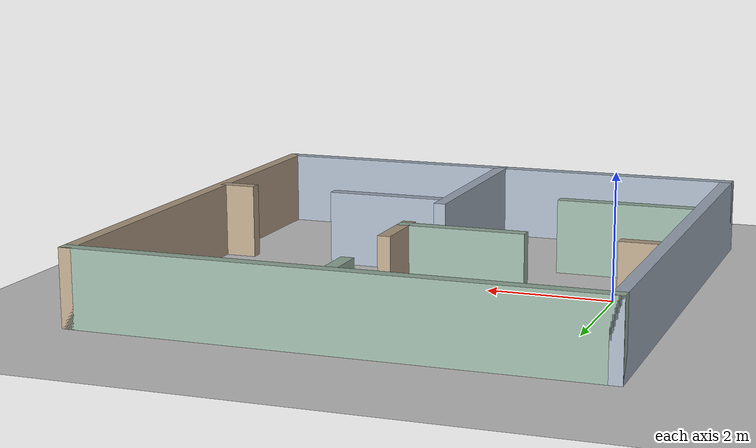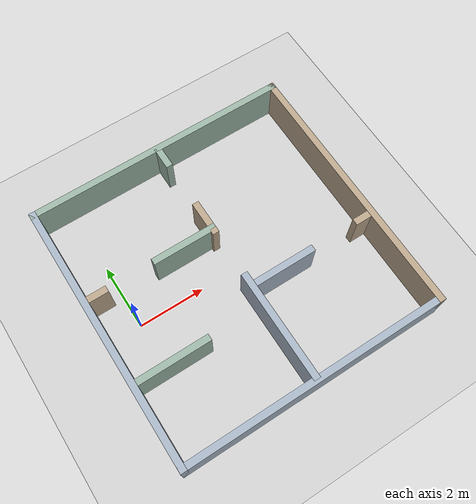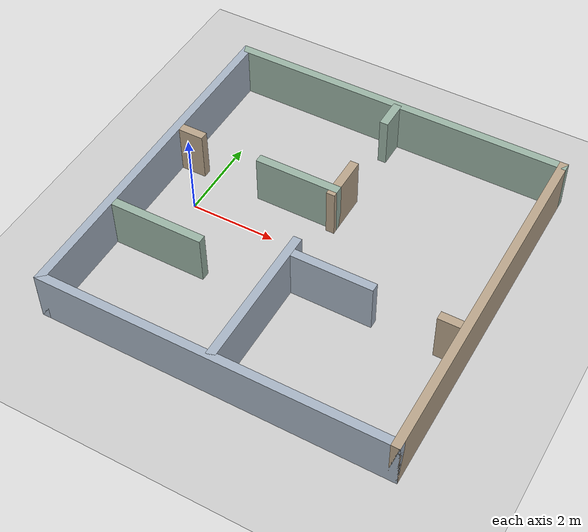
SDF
<?xml version='1.0' encoding='utf-8'?>
<sdf version="1.9">
  <world name="office_loop_01">
    <plugin filename="gz-sim-physics-system" name="gz::sim::systems::Physics" />
    <plugin filename="gz-sim-user-commands-system" name="gz::sim::systems::UserCommands" />
    <plugin filename="gz-sim-scene-broadcaster-system" name="gz::sim::systems::SceneBroadcaster" />
    <plugin filename="gz-sim-sensors-system" name="gz::sim::systems::Sensors">
      <render_engine>ogre2</render_engine>
    </plugin>
    <plugin filename="gz-sim-imu-system" name="gz::sim::systems::Imu">
        </plugin>
    <light type="directional" name="sun">
      <cast_shadows>true</cast_shadows>
      <pose>0 0 10 0 0 0</pose>
      <diffuse>0.8 0.8 0.8 1</diffuse>
      <specular>0.2 0.2 0.2 1</specular>
      <direction>-0.5 0.1 -0.9</direction>
    </light>
    <model name="ground_plane">
      <static>true</static>
      <link name="link">
        <collision name="collision">
          <geometry>
            <plane>
              <normal>0 0 1</normal>
            </plane>
          </geometry>
        </collision>
        <visual name="visual">
          <geometry>
            <plane>
              <normal>0 0 1</normal>
              <size>100 100</size>
            </plane>
          </geometry>
          <material>
            <ambient>0.8 0.8 0.8 1</ambient>
            <diffuse>0.8 0.8 0.8 1</diffuse>
          </material>
        </visual>
      </link>
    </model>
    <model name="outer_w">
      <static>true</static>
      <pose>-1 0 .6 0 0 0</pose>
      <link name="wall">
        <collision name="collision">
          <geometry>
            <box>
              <size>0.2 8.2 1.2</size>
            </box>
          </geometry>
        </collision>
        <visual name="visual">
          <geometry>
            <box>
              <size>0.2 8.2 1.2</size>
            </box>
          </geometry>
          <material>
            <ambient>0.65 0.70 0.76 1</ambient>
            <diffuse>0.65 0.70 0.76 1</diffuse>
          </material>
        </visual>
      </link>
    </model>
    <model name="outer_e">
      <static>true</static>
      <pose>7 0 .6 0 0 0</pose>
      <link name="wall">
        <collision name="collision">
          <geometry>
            <box>
              <size>0.2 8.2 1.2</size>
            </box>
          </geometry>
        </collision>
        <visual name="visual">
          <geometry>
            <box>
              <size>0.2 8.2 1.2</size>
            </box>
          </geometry>
          <material>
            <ambient>0.72 0.64 0.54 1</ambient>
            <diffuse>0.72 0.64 0.54 1</diffuse>
          </material>
        </visual>
      </link>
    </model>
    <model name="outer_n">
      <static>true</static>
      <pose>3 4 .6 0 0 0</pose>
      <link name="wall">
        <collision name="collision">
          <geometry>
            <box>
              <size>8.2 0.2 1.2</size>
            </box>
          </geometry>
        </collision>
        <visual name="visual">
          <geometry>
            <box>
              <size>8.2 0.2 1.2</size>
            </box>
          </geometry>
          <material>
            <ambient>0.60 0.70 0.64 1</ambient>
            <diffuse>0.60 0.70 0.64 1</diffuse>
          </material>
        </visual>
      </link>
    </model>
    <model name="outer_s">
      <static>true</static>
      <pose>3 -4 .6 0 0 0</pose>
      <link name="wall">
        <collision name="collision">
          <geometry>
            <box>
              <size>8.2 0.2 1.2</size>
            </box>
          </geometry>
        </collision>
        <visual name="visual">
          <geometry>
            <box>
              <size>8.2 0.2 1.2</size>
            </box>
          </geometry>
          <material>
            <ambient>0.65 0.70 0.76 1</ambient>
            <diffuse>0.65 0.70 0.76 1</diffuse>
          </material>
        </visual>
      </link>
    </model>
    <model name="ab_w">
      <static>true</static>
      <pose>-0.6 1 .6 0 0 0</pose>
      <link name="wall">
        <collision name="collision">
          <geometry>
            <box>
              <size>0.6 0.2 1.2</size>
            </box>
          </geometry>
        </collision>
        <visual name="visual">
          <geometry>
            <box>
              <size>0.6 0.2 1.2</size>
            </box>
          </geometry>
          <material>
            <ambient>0.72 0.64 0.54 1</ambient>
            <diffuse>0.72 0.64 0.54 1</diffuse>
          </material>
        </visual>
      </link>
    </model>
    <model name="ab_e">
      <static>true</static>
      <pose>2.1 1 .6 0 0 0</pose>
      <link name="wall">
        <collision name="collision">
          <geometry>
            <box>
              <size>2.0 0.2 1.2</size>
            </box>
          </geometry>
        </collision>
        <visual name="visual">
          <geometry>
            <box>
              <size>2.0 0.2 1.2</size>
            </box>
          </geometry>
          <material>
            <ambient>0.60 0.70 0.64 1</ambient>
            <diffuse>0.60 0.70 0.64 1</diffuse>
          </material>
        </visual>
      </link>
    </model>
    <model name="ac_s">
      <static>true</static>
      <pose>3 -2.3 .6 0 0 0</pose>
      <link name="wall">
        <collision name="collision">
          <geometry>
            <box>
              <size>0.2 3.4 1.2</size>
            </box>
          </geometry>
        </collision>
        <visual name="visual">
          <geometry>
            <box>
              <size>0.2 3.4 1.2</size>
            </box>
          </geometry>
          <material>
            <ambient>0.65 0.70 0.76 1</ambient>
            <diffuse>0.65 0.70 0.76 1</diffuse>
          </material>
        </visual>
      </link>
    </model>
    <model name="ac_mid">
      <static>true</static>
      <pose>3 1.35 .6 0 0 0</pose>
      <link name="wall">
        <collision name="collision">
          <geometry>
            <box>
              <size>0.2 1.1 1.2</size>
            </box>
          </geometry>
        </collision>
        <visual name="visual">
          <geometry>
            <box>
              <size>0.2 1.1 1.2</size>
            </box>
          </geometry>
          <material>
            <ambient>0.72 0.64 0.54 1</ambient>
            <diffuse>0.72 0.64 0.54 1</diffuse>
          </material>
        </visual>
      </link>
    </model>
    <model name="bc_n">
      <static>true</static>
      <pose>3 3.65 .6 0 0 0</pose>
      <link name="wall">
        <collision name="collision">
          <geometry>
            <box>
              <size>0.2 0.7 1.2</size>
            </box>
          </geometry>
        </collision>
        <visual name="visual">
          <geometry>
            <box>
              <size>0.2 0.7 1.2</size>
            </box>
          </geometry>
          <material>
            <ambient>0.60 0.70 0.64 1</ambient>
            <diffuse>0.60 0.70 0.64 1</diffuse>
          </material>
        </visual>
      </link>
    </model>
    <model name="cd_w">
      <static>true</static>
      <pose>4 -1 .6 0 0 0</pose>
      <link name="wall">
        <collision name="collision">
          <geometry>
            <box>
              <size>2.0 0.2 1.2</size>
            </box>
          </geometry>
        </collision>
        <visual name="visual">
          <geometry>
            <box>
              <size>2.0 0.2 1.2</size>
            </box>
          </geometry>
          <material>
            <ambient>0.65 0.70 0.76 1</ambient>
            <diffuse>0.65 0.70 0.76 1</diffuse>
          </material>
        </visual>
      </link>
    </model>
    <model name="cd_e">
      <static>true</static>
      <pose>6.7 -1 .6 0 0 0</pose>
      <link name="wall">
        <collision name="collision">
          <geometry>
            <box>
              <size>0.6 0.2 1.2</size>
            </box>
          </geometry>
        </collision>
        <visual name="visual">
          <geometry>
            <box>
              <size>0.6 0.2 1.2</size>
            </box>
          </geometry>
          <material>
            <ambient>0.72 0.64 0.54 1</ambient>
            <diffuse>0.72 0.64 0.54 1</diffuse>
          </material>
        </visual>
      </link>
    </model>
    <model name="partition">
      <static>true</static>
      <pose>0.2 -1.6 .6 0 0 0</pose>
      <link name="wall">
        <collision name="collision">
          <geometry>
            <box>
              <size>2.2 0.2 1.2</size>
            </box>
          </geometry>
        </collision>
        <visual name="visual">
          <geometry>
            <box>
              <size>2.2 0.2 1.2</size>
            </box>
          </geometry>
          <material>
            <ambient>0.60 0.70 0.64 1</ambient>
            <diffuse>0.60 0.70 0.64 1</diffuse>
          </material>
        </visual>
      </link>
    </model>
  </world>
</sdf>
